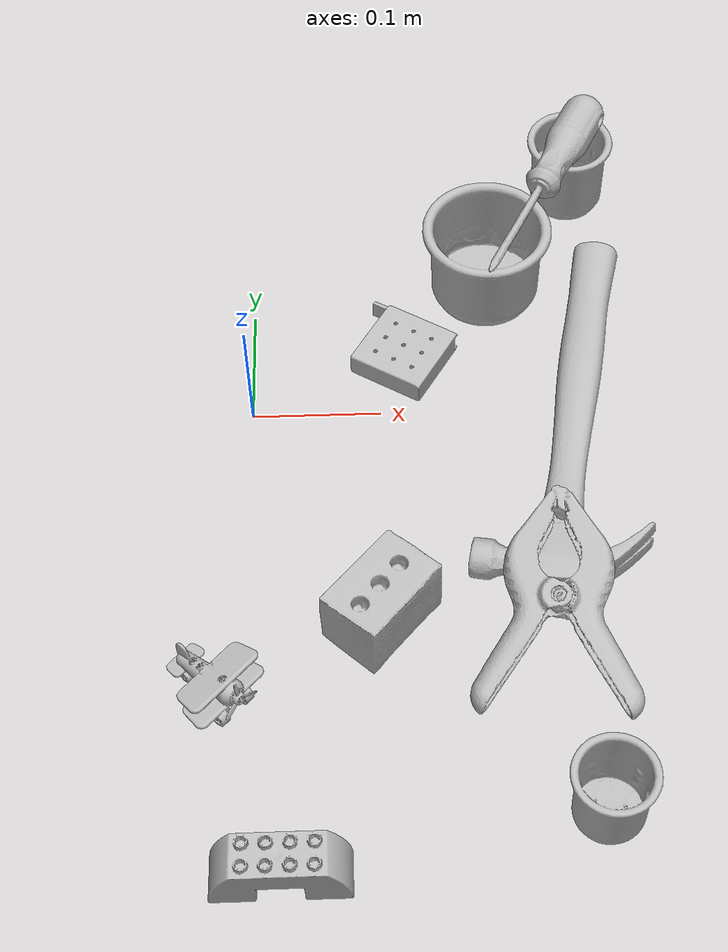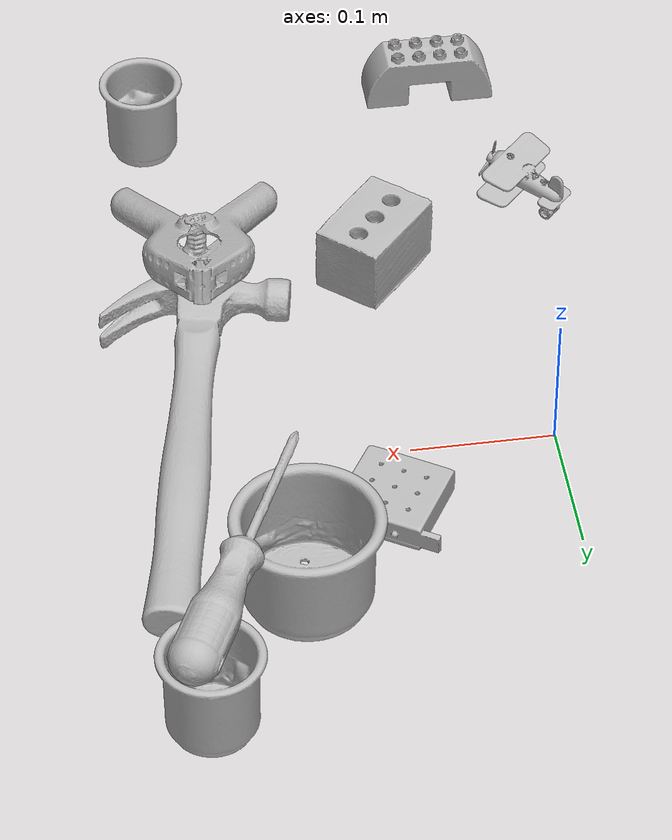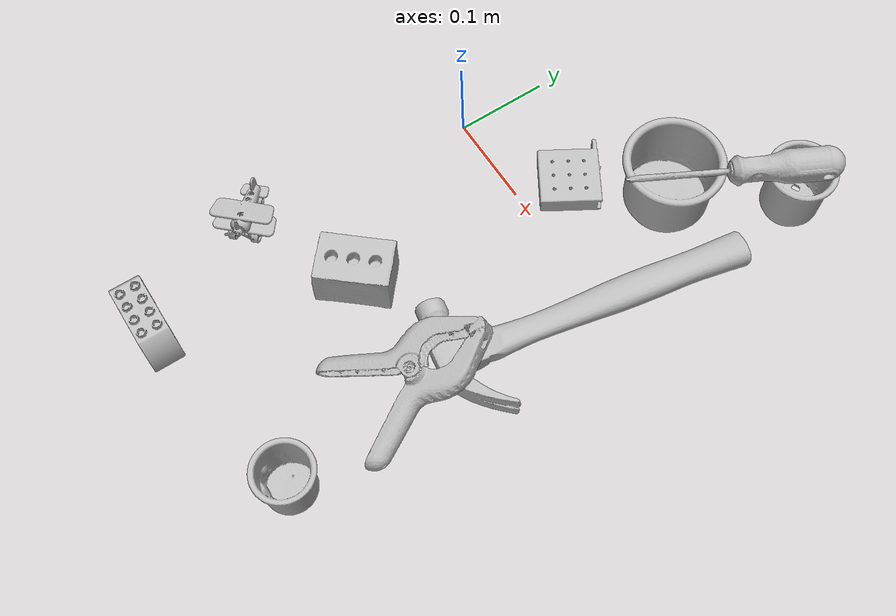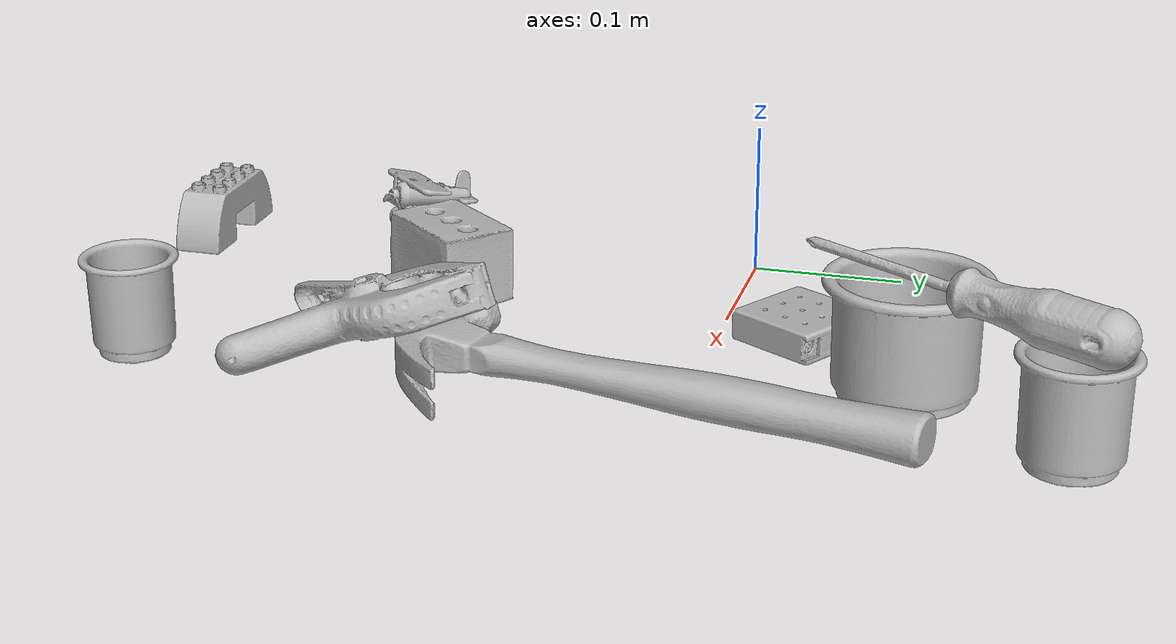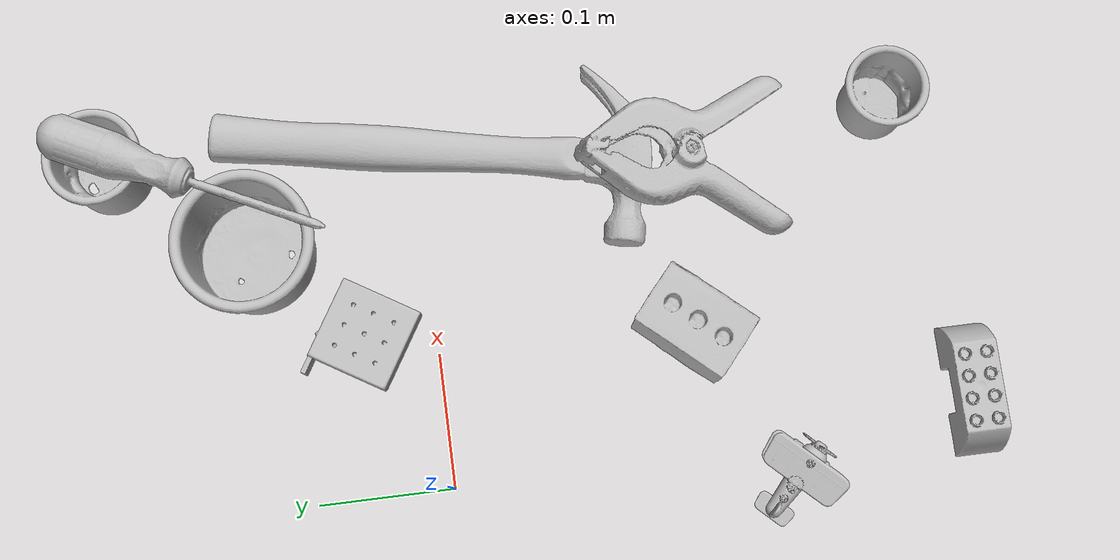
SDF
<sdf version="1.4">
  <world name="default">
    <light name="light1" type="point">
      <pose>0 0 1 0 0 0</pose>
      <diffuse>3 3 3 1</diffuse>
      <specular>3 3 3 1</specular>
    </light>
    <light name="light2" type="point">
      <pose>0 0.5 2 0 0 0</pose>
      <diffuse>1 1 1 1</diffuse>
      <specular>1 1 1 1</specular>
    </light>
    <light name="light3" type="point">
      <pose>0 0.5 2 0 0 0</pose>
      <diffuse>3 3 3 1</diffuse>
      <specular>3 3 3 1</specular>
    </light>
    <scene>
      <ambient>0.7 0.7 0.7</ambient>
    </scene>
    <model name="cup1">
      <link name="link_cup1">
        <collision name="default">
          <geometry>
            <mesh>
              <uri>model://j_cups/collision_meshes/collision.obj</uri>
              <scale>1.0 1.0 1.0</scale>
            </mesh>
          </geometry>
          <surface>
            <friction>
              <ode>
                <mu>0.5</mu>
                <mu2>0.5</mu2>
              </ode>
            </friction>
          <contact>
        <ode>
            <max_vel>0</max_vel>
            <min_depth>0.0001</min_depth>
            <kp>1e8</kp>
        </ode>
    </contact></surface>
        </collision>
        <visual name="default">
          <geometry>
            <mesh>
              <uri>model://j_cups/visual_meshes/visual.dae</uri>
              <scale>1.0 1.0 1.0</scale>
            </mesh>
          </geometry>
        </visual>
        <inertial>
          <mass>0.1112113818526268</mass>
          <pose>0.0006164852529764175 0.0005398975918069482 -0.0013479019980877638 0.030303955005909274 0.03757984422505388 0.4386955526072484</pose>
          <inertia>
            <ixx>0.00016329347</ixx>
            <iyy>0.00016499148</iyy>
            <izz>0.00018824349</izz>
            <ixy>0</ixy>
            <ixz>0</ixz>
            <iyz>0</iyz>
          </inertia>
        </inertial>
      </link>
      <pose>0.18859119713306427 0.12563693523406982 0.037988997995853424 -7.865272167945901e-08 -1.3811463915440289e-07 -0.9952619818318587</pose>
    </model>
    <model name="cup2">
      <link name="link_cup2">
        <collision name="default">
          <geometry>
            <mesh>
              <uri>model://b_cups/collision_meshes/collision.obj</uri>
              <scale>1.0 1.0 1.0</scale>
            </mesh>
          </geometry>
          <surface>
            <friction>
              <ode>
                <mu>0.5</mu>
                <mu2>0.5</mu2>
              </ode>
            </friction>
          <contact>
        <ode>
            <max_vel>0</max_vel>
            <min_depth>0.0001</min_depth>
            <kp>1e8</kp>
        </ode>
    </contact></surface>
        </collision>
        <visual name="default">
          <geometry>
            <mesh>
              <uri>model://b_cups/visual_meshes/visual.dae</uri>
              <scale>1.0 1.0 1.0</scale>
            </mesh>
          </geometry>
        </visual>
        <inertial>
          <mass>0.040588438510894775</mass>
          <pose>0.0005182006862014532 0.001805859268642962 -0.001338181202299893 0.11356319114734177 0.03872522211554688 -0.34569586720892936</pose>
          <inertia>
            <ixx>2.6567977e-05</ixx>
            <iyy>2.6063572e-05</iyy>
            <izz>2.235645e-05</izz>
            <ixy>0</ixy>
            <ixz>0</ixz>
            <iyz>0</iyz>
          </inertia>
        </inertial>
      </link>
      <pose>0.2458975464105606 -0.3459317088127136 0.031996261328458786 -0.007619802990558658 -0.0038751727742023664 -2.5791883388701384</pose>
    </model>
    <model name="cup3">
      <link name="link_cup3">
        <collision name="default">
          <geometry>
            <mesh>
              <uri>model://d_cups/collision_meshes/collision.obj</uri>
              <scale>1.0 1.0 1.0</scale>
            </mesh>
          </geometry>
          <surface>
            <friction>
              <ode>
                <mu>0.5</mu>
                <mu2>0.5</mu2>
              </ode>
            </friction>
          <contact>
        <ode>
            <max_vel>0</max_vel>
            <min_depth>0.0001</min_depth>
            <kp>1e8</kp>
        </ode>
    </contact></surface>
        </collision>
        <visual name="default">
          <geometry>
            <mesh>
              <uri>model://d_cups/visual_meshes/visual.dae</uri>
              <scale>1.0 1.0 1.0</scale>
            </mesh>
          </geometry>
        </visual>
        <inertial>
          <mass>0.030152590945363045</mass>
          <pose>0.000806804746389389 0.0019117394695058465 -0.0022666517179459333 0.2401234305416289 -0.2470973002062907 0.5942515272324471</pose>
          <inertia>
            <ixx>2.5244808e-05</ixx>
            <iyy>2.517175e-05</iyy>
            <izz>2.2850849e-05</izz>
            <ixy>0</ixy>
            <ixz>0</ixz>
            <iyz>0</iyz>
          </inertia>
        </inertial>
      </link>
      <pose>0.2637498378753662 0.22752432525157928 0.03466340899467468 -0.0001936372812746997 -0.00015106458603591849 1.4408470100288124</pose>
    </model>
    <model name="toy1">
      <link name="link_toy1">
        <collision name="default">
          <geometry>
            <mesh>
              <uri>model://e_lego_duplo/collision_meshes/collision.obj</uri>
              <scale>1.0 1.0 1.0</scale>
            </mesh>
          </geometry>
          <surface>
            <friction>
              <ode>
                <mu>0.5</mu>
                <mu2>0.5</mu2>
              </ode>
            </friction>
          <contact>
        <ode>
            <max_vel>0</max_vel>
            <min_depth>0.0001</min_depth>
            <kp>1e8</kp>
        </ode>
    </contact></surface>
        </collision>
        <visual name="default">
          <geometry>
            <mesh>
              <uri>model://e_lego_duplo/visual_meshes/visual.dae</uri>
              <scale>1.0 1.0 1.0</scale>
            </mesh>
          </geometry>
        </visual>
        <inertial>
          <mass>0.09282131493091583</mass>
          <pose>0.0003256045747548342 0.00023485456767957658 0.0019521460635587573 -0.022567664257634346 -6.825452093688492e-05 -0.007625138047361518</pose>
          <inertia>
            <ixx>1.9356308e-05</ixx>
            <iyy>7.944328e-05</iyy>
            <izz>7.736177e-05</izz>
            <ixy>0</ixy>
            <ixz>0</ixz>
            <iyz>0</iyz>
          </inertia>
        </inertial>
      </link>
      <pose>0.025448890402913094 -0.3837282359600067 0.02180899679660797 5.165918606074018e-07 3.5541291825105154e-08 0.0037535289550523414</pose>
    </model>
    <model name="toy2">
      <link name="link_toy2">
        <collision name="default">
          <geometry>
            <mesh>
              <uri>model://nine_hole_peg_test/collision_meshes/collision.obj</uri>
              <scale>0.5 0.5 0.5</scale>
            </mesh>
          </geometry>
          <surface>
            <friction>
              <ode>
                <mu>0.5</mu>
                <mu2>0.5</mu2>
              </ode>
            </friction>
          <contact>
        <ode>
            <max_vel>0</max_vel>
            <min_depth>0.0001</min_depth>
            <kp>1e8</kp>
        </ode>
    </contact></surface>
        </collision>
        <visual name="default">
          <geometry>
            <mesh>
              <uri>model://nine_hole_peg_test/visual_meshes/visual.dae</uri>
              <scale>0.5 0.5 0.5</scale>
            </mesh>
          </geometry>
        </visual>
        <inertial>
          <mass>0.0661587193608284</mass>
          <pose>-0.002308693015947938 -0.0048238071613013744 1.3230345757619943e-05 -0.0014666794270044752 0.0007194176174711586 -0.6342418340283942</pose>
          <inertia>
            <ixx>2.5862508e-05</ixx>
            <iyy>2.4147552e-05</iyy>
            <izz>4.531874e-05</izz>
            <ixy>0</ixy>
            <ixz>0</ixz>
            <iyz>0</iyz>
          </inertia>
        </inertial>
      </link>
      <pose>0.11678928881883621 0.057559382170438766 0.010385495610535145 -1.109973034399531e-09 8.449010070108844e-09 1.0284842674672552</pose>
    </model>
    <model name="toy3">
      <link name="link_toy3">
        <collision name="default">
          <geometry>
            <mesh>
              <uri>model://foam_brick/collision_meshes/collision.obj</uri>
              <scale>1.0 1.0 1.0</scale>
            </mesh>
          </geometry>
          <surface>
            <friction>
              <ode>
                <mu>0.5</mu>
                <mu2>0.5</mu2>
              </ode>
            </friction>
          <contact>
        <ode>
            <max_vel>0</max_vel>
            <min_depth>0.0001</min_depth>
            <kp>1e8</kp>
        </ode>
    </contact></surface>
        </collision>
        <visual name="default">
          <geometry>
            <mesh>
              <uri>model://foam_brick/visual_meshes/visual.dae</uri>
              <scale>1.0 1.0 1.0</scale>
            </mesh>
          </geometry>
        </visual>
        <inertial>
          <mass>0.15239986777305603</mass>
          <pose>-0.00025224717683158815 0.0003458431747276336 -0.00025321010616607964 -0.29401565585717926 0.017274441097588973 -0.0007449887293440311</pose>
          <inertia>
            <ixx>6.6571105e-05</ixx>
            <iyy>0.00010628419</iyy>
            <izz>0.00010763494</izz>
            <ixy>0</ixy>
            <ixz>0</ixz>
            <iyz>0</iyz>
          </inertia>
        </inertial>
      </link>
      <pose>0.09609851986169815 -0.1876918077468872 0.025922810658812523 0.013416966229065708 0.004152920986574074 -2.2904151977342573</pose>
    </model>
    <model name="toy4">
      <link name="link_toy4">
        <collision name="default">
          <geometry>
            <mesh>
              <uri>model://a_toy_airplane/collision_meshes/collision.obj</uri>
              <scale>0.25 0.25 0.25</scale>
            </mesh>
          </geometry>
          <surface>
            <friction>
              <ode>
                <mu>0.5</mu>
                <mu2>0.5</mu2>
              </ode>
            </friction>
          <contact>
        <ode>
            <max_vel>0</max_vel>
            <min_depth>0.0001</min_depth>
            <kp>1e8</kp>
        </ode>
    </contact></surface>
        </collision>
        <visual name="default">
          <geometry>
            <mesh>
              <uri>model://a_toy_airplane/visual_meshes/visual.dae</uri>
              <scale>0.25 0.25 0.25</scale>
            </mesh>
          </geometry>
        </visual>
        <inertial>
          <mass>0.01630575954914093</mass>
          <pose>0.006291272584348917 -0.0009268299327231944 -0.0002990612993016839 -0.012016942866631759 -0.1466350865210375 0.004149072887705313</pose>
          <inertia>
            <ixx>3.7008767e-06</ixx>
            <iyy>5.392928e-06</iyy>
            <izz>6.314456e-06</izz>
            <ixy>0</ixy>
            <ixz>0</ixz>
            <iyz>0</iyz>
          </inertia>
        </inertial>
      </link>
      <pose>-0.023948485031723976 -0.24312449991703033 0.02309000864624977 1.7142087895626415e-05 -2.98394402951123e-05 -0.7639865705267088</pose>
    </model>
    <model name="hardware1">
      <link name="link_hardware1">
        <collision name="default">
          <geometry>
            <mesh>
              <uri>model://phillips_screwdriver/collision_meshes/collision.obj</uri>
              <scale>1.0 1.0 1.0</scale>
            </mesh>
          </geometry>
          <surface>
            <friction>
              <ode>
                <mu>0.5</mu>
                <mu2>0.5</mu2>
              </ode>
            </friction>
          <contact>
        <ode>
            <max_vel>0</max_vel>
            <min_depth>0.0001</min_depth>
            <kp>1e8</kp>
        </ode>
    </contact></surface>
        </collision>
        <visual name="default">
          <geometry>
            <mesh>
              <uri>model://phillips_screwdriver/visual_meshes/visual.dae</uri>
              <scale>1.0 1.0 1.0</scale>
            </mesh>
          </geometry>
        </visual>
        <inertial>
          <mass>0.05757145583629608</mass>
          <pose>-0.04777182266116142 0.001036230125464499 -0.000455554953077808 -0.1572215307256514 0.005850991069928943 -0.0021567397451199392</pose>
          <inertia>
            <ixx>6.764056e-06</ixx>
            <iyy>8.480946e-05</iyy>
            <izz>8.4881525e-05</izz>
            <ixy>0</ixy>
            <ixz>0</ixz>
            <iyz>0</iyz>
          </inertia>
        </inertial>
      </link>
      <pose>0.23502057790756226 0.1637205183506012 0.08705729991197586 -0.00853921749914331 -0.04986569719541512 -2.0275944196677878</pose>
    </model>
    <model name="hardware2">
      <link name="link_hardware2">
        <collision name="default">
          <geometry>
            <mesh>
              <uri>model://hammer/collision_meshes/collision.obj</uri>
              <scale>1.0 1.0 1.0</scale>
            </mesh>
          </geometry>
          <surface>
            <friction>
              <ode>
                <mu>0.5</mu>
                <mu2>0.5</mu2>
              </ode>
            </friction>
          <contact>
        <ode>
            <max_vel>0</max_vel>
            <min_depth>0.0001</min_depth>
            <kp>1e8</kp>
        </ode>
    </contact></surface>
        </collision>
        <visual name="default">
          <geometry>
            <mesh>
              <uri>model://hammer/visual_meshes/visual.dae</uri>
              <scale>1.0 1.0 1.0</scale>
            </mesh>
          </geometry>
        </visual>
        <inertial>
          <mass>0.19043192267417908</mass>
          <pose>0.00941577646881342 -0.011892358772456646 -0.0001235063245985657 0.023155672419862355 -0.004792164441448863 -0.012760315407460211</pose>
          <inertia>
            <ixx>8.15718e-05</ixx>
            <iyy>0.0022103586</iyy>
            <izz>0.002273686</izz>
            <ixy>0</ixy>
            <ixz>0</ixz>
            <iyz>0</iyz>
          </inertia>
        </inertial>
      </link>
      <pose>0.2596118748188019 -0.02580338530242443 0.016268417239189148 -0.005196556104272497 -0.0013858109680872893 -1.7600817857446245</pose>
    </model>
    <model name="hardware3">
      <link name="link_hardware3">
        <collision name="default">
          <geometry>
            <mesh>
              <uri>model://large_clamp/collision_meshes/collision.obj</uri>
              <scale>1.0 1.0 1.0</scale>
            </mesh>
          </geometry>
          <surface>
            <friction>
              <ode>
                <mu>0.5</mu>
                <mu2>0.5</mu2>
              </ode>
            </friction>
          <contact>
        <ode>
            <max_vel>0</max_vel>
            <min_depth>0.0001</min_depth>
            <kp>1e8</kp>
        </ode>
    </contact></surface>
        </collision>
        <visual name="default">
          <geometry>
            <mesh>
              <uri>model://large_clamp/visual_meshes/visual.dae</uri>
              <scale>1.0 1.0 1.0</scale>
            </mesh>
          </geometry>
        </visual>
        <inertial>
          <mass>0.18636001646518707</mass>
          <pose>0.006369354669004679 0.0003585688828025013 -0.0001839799078879878 -0.0021330740505354343 0.009671591251539349 0.02663317297682702</pose>
          <inertia>
            <ixx>0.0001644205</ixx>
            <iyy>0.00031224336</iyy>
            <izz>0.00045169977</izz>
            <ixy>0</ixy>
            <ixz>0</ixz>
            <iyz>0</iyz>
          </inertia>
        </inertial>
      </link>
      <pose>0.22213967144489288 -0.19745765626430511 0.03518473356962204 0.007984998312713426 -0.31834682977373524 1.4763037449659622</pose>
    </model>
  <physics type="ode">
      <max_contacts>50</max_contacts>
      <ode>
        <solver>
          <type>quick</type>
          <iters>75</iters>
        </solver>
        <constraints>
          <contact_max_correcting_vel>0</contact_max_correcting_vel>
          <contact_surface_layer>0</contact_surface_layer>
        </constraints>
      </ode>
    </physics></world>
</sdf>
